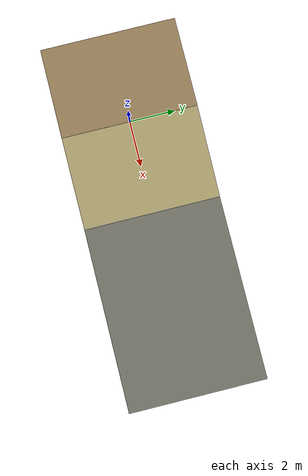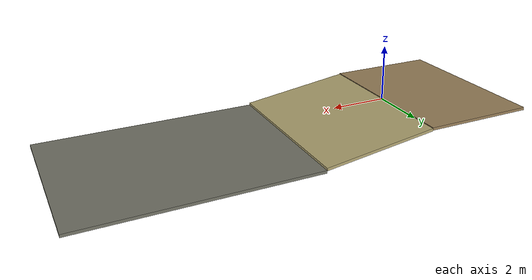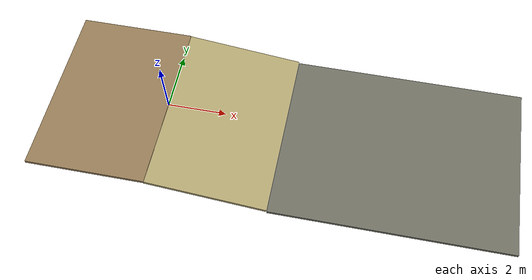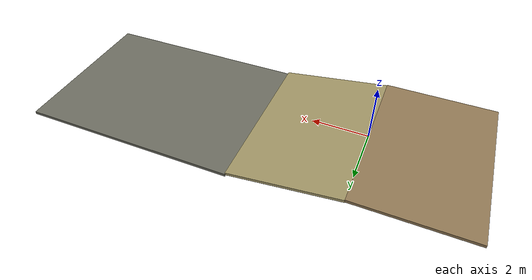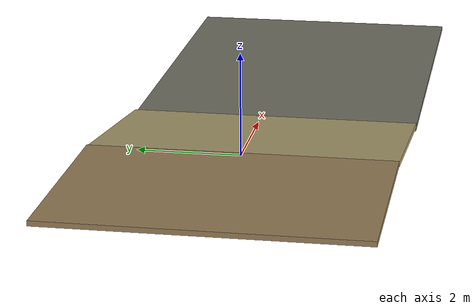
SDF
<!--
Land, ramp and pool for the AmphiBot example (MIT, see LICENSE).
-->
<?xml version="1.0" ?>
<sdf version="1.6">
  <world name="world">
    <model name="arena_ramp">
      <pose>0 0 0 0 0 0</pose>
      <link name="land">
        <pose>-2 0 0 0 0 0</pose>
        <collision name="land_collision">
          <geometry><box><size>4 6 0.1</size></box></geometry>
        </collision>
        <visual name="land_visual">
          <geometry><box><size>4 6 0.1</size></box></geometry>
          <material>
            <ambient>0.55 0.45 0.3 1</ambient>
            <diffuse>0.6 0.5 0.35 1</diffuse>
          </material>
        </visual>
      </link>
      <link name="ramp">
        <pose>1.993 0 -0.2995 0 0.1365 0</pose>
        <collision name="ramp_collision">
          <geometry><box><size>4.04 6 0.1</size></box></geometry>
        </collision>
        <visual name="ramp_visual">
          <geometry><box><size>4.04 6 0.1</size></box></geometry>
          <material>
            <ambient>0.6 0.55 0.4 1</ambient>
            <diffuse>0.7 0.65 0.45 1</diffuse>
          </material>
        </visual>
      </link>
      <link name="pool_floor">
        <pose>8 0 -0.65 0 0 0</pose>
        <collision name="pool_floor_collision">
          <geometry><box><size>8 6 0.1</size></box></geometry>
        </collision>
        <visual name="pool_floor_visual">
          <geometry><box><size>8 6 0.1</size></box></geometry>
          <material>
            <ambient>0.4 0.4 0.35 1</ambient>
            <diffuse>0.45 0.45 0.4 1</diffuse>
          </material>
        </visual>
      </link>
    </model>
  </world>
</sdf>
